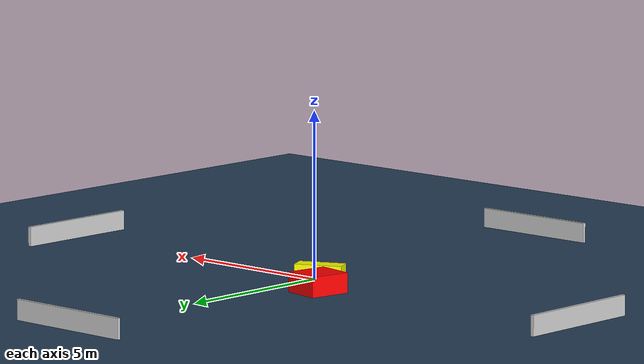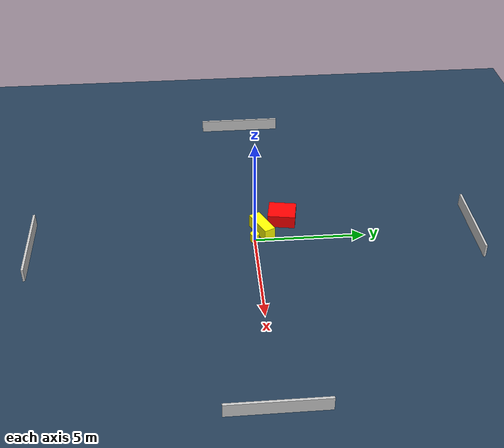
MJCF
<?xml version="1.0" ?>
<mujoco model="generated_environment">
  <option timestep="0.01" integrator="RK4" cone="elliptic"/>
  <default>
    <geom density="1"/>
  </default>
  <asset>
    <texture builtin="gradient" height="3072" name="skybox" rgb1="0.3 0.5 0.7" rgb2="0 0 0" type="skybox" width="512"/>
    <texture builtin="checker" height="300" name="groundplane" rgb1="0.2 0.3 0.4" rgb2="0.1 0.2 0.3" type="2d" width="300"/>
    <material name="groundplane" reflectance="0.2" texrepeat="5 5" texture="groundplane"/>
  </asset>
  <worldbody>
    <light dir="0 0 -1" directional="true" pos="0 0 1.5"/>
    <geom condim="3" friction="0.5 0.005 0.001" material="groundplane" name="floor" pos="0 0 0" size="0 0 0.05" type="plane"/>
    <body name="walls">
      <geom name="wall_1" condim="4" pos="-10.0 0.0 0.3" rgba="0.800000011920929 0.800000011920929 0.800000011920929 1.0" size="0.05 2.0 0.3" type="box"/>
      <geom name="wall_2" condim="4" pos="10.0 0.0 0.3" rgba="0.800000011920929 0.800000011920929 0.800000011920929 1.0" size="0.05 2.0 0.3" type="box"/>
      <geom name="wall_3" condim="4" pos="0.0 -10.0 0.3" rgba="0.800000011920929 0.800000011920929 0.800000011920929 1.0" size="2.0 0.05 0.3" type="box"/>
      <geom name="wall_4" condim="4" pos="0.0 10.0 0.3" rgba="0.800000011920929 0.800000011920929 0.800000011920929 1.0" size="2.0 0.05 0.3" type="box"/>
    </body>
    <body name="robot">
      <joint name="joint_x" type="slide" pos="0 0 0" axis="1 0 0"/>
      <joint name="joint_y" type="slide" pos="0 0 0" axis="0 1 0"/>
      <geom name="robot" type="cylinder" pos="0.0 0.0 0.2" size="0.2 0.2 0.0" mass="5.0" friction="1.0 0.005 0.0001" condim="4" rgba="1.0 1.0 0.0 1.0"/>
    </body>
    <body name="obstacle_1_movable">
      <geom name="obstacle_1_movable" condim="4" pos="-0.5944839419756149 0.3835174271351022 0.3" euler="0 0 205.95168033593046" friction="0.0 0.005 0.001" rgba="1.0 1.0 0.0 1.0" size="0.7114191130006369 0.2667412939804417 0.3" type="box" mass="0.1"/>
      <joint type="free"/>
    </body>
    <body name="obstacle_2_static">
      <geom name="obstacle_2_static" condim="4" pos="-1.436660618309266 1.3853916445630816 0.3" euler="0 0 170.16122935111196" friction="0.0 0.005 0.001" rgba="1.0 0.0 0.0 1.0" size="0.567085931497004 0.631171644250568 0.3" type="box"/>
    </body>
  </worldbody>
  <actuator>
    <motor name="actuator_x" joint="joint_x" gear="1" ctrlrange="-1 1"/>
    <motor name="actuator_y" joint="joint_y" gear="1" ctrlrange="-1 1"/>
  </actuator>
</mujoco>
